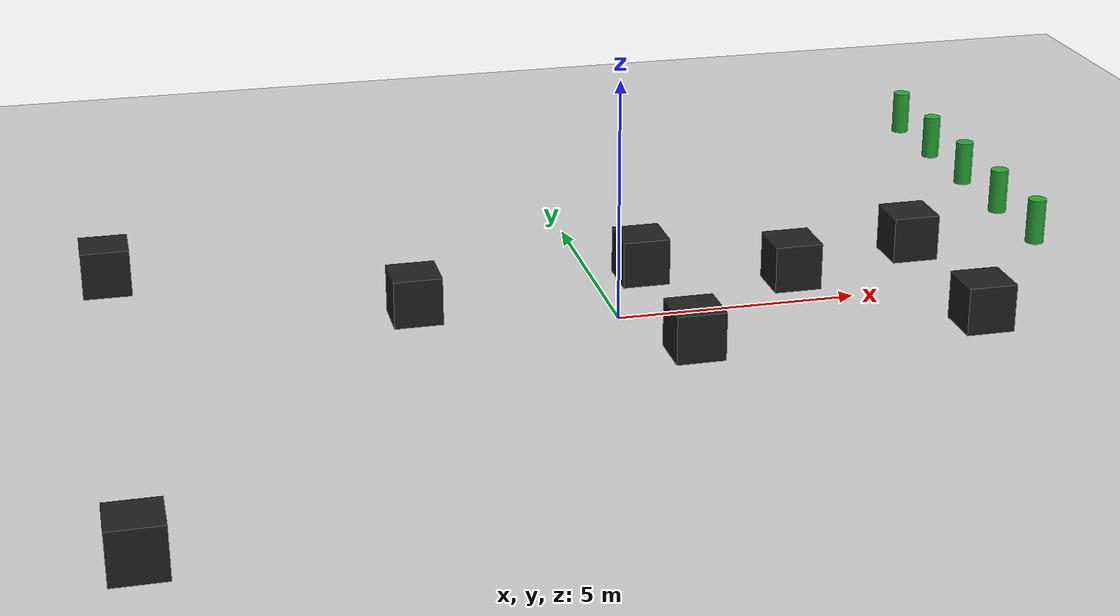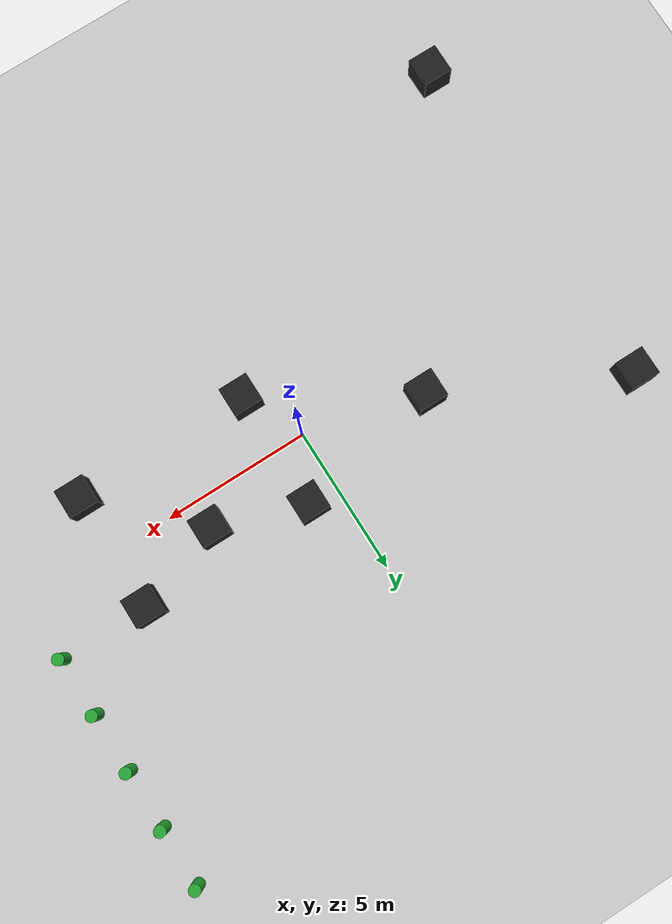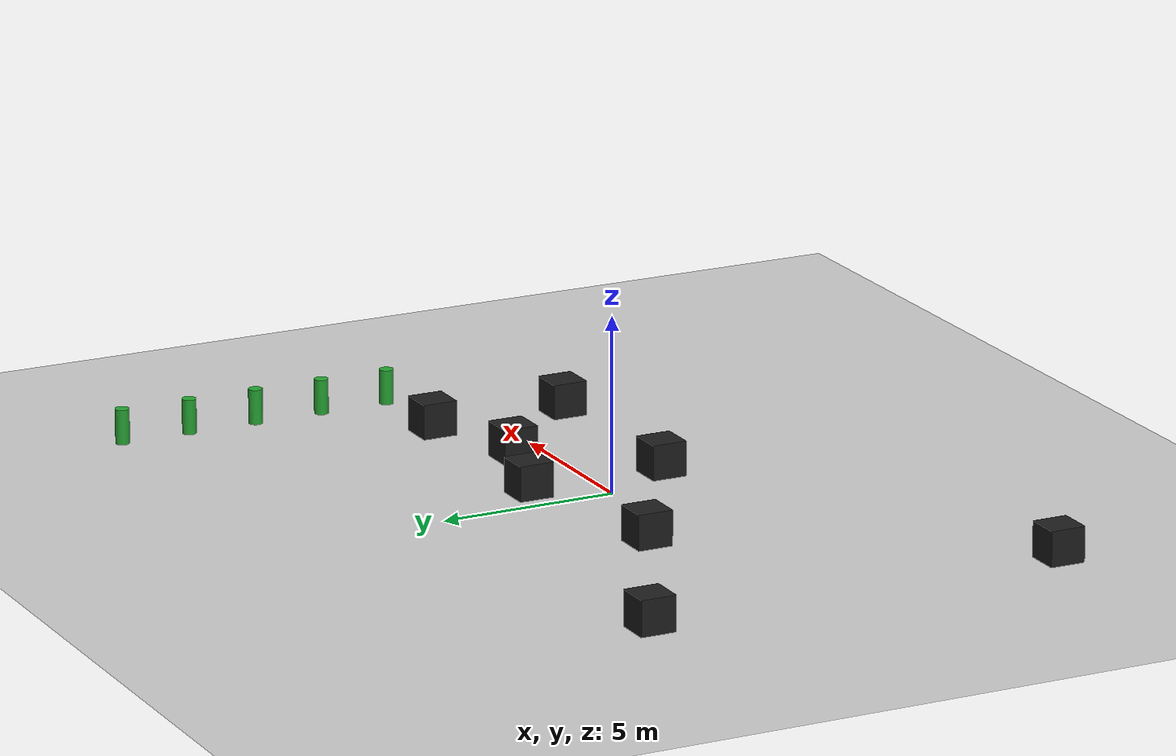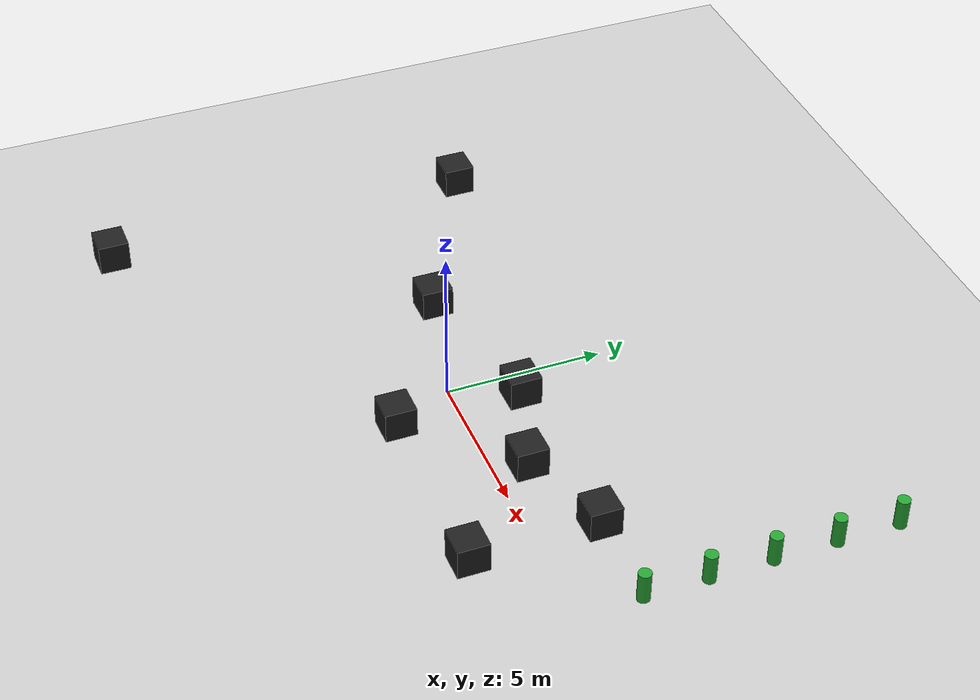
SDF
<?xml version="1.0" ?>
<sdf version="1.4">
  <world name="default">
    <!-- A global light source -->
    <include>
      <uri>model://sun</uri>
    </include>
    <!-- A ground plane -->
    <include>
      <uri>model://ground_plane</uri>
    </include>
    <!-- Own physics settings to speed up simulation -->
    <physics type='ode'>
      <max_step_size>0.01</max_step_size>
      <gravity>0 0 -9.8</gravity>
    </physics>

		<model name='point_goal0'>
			<pose>10 10 0.5 0 0 0</pose>
			<link name='link'>
				<inertial>
					<mass>1</mass>
				</inertial>
				<visual name='visual'>
					<geometry>
						<cylinder>
								<radius>0.2</radius>
								<length>1.0</length>
						</cylinder>
					</geometry>
					<material>
						<script>
							<uri>file://media/materials/scripts/gazebo.material</uri>
							<name>Gazebo/Green</name>
						</script>
					</material>
				</visual>
				<velocity_decay>
					<linear>0</linear>
					<angular>0</angular>
				</velocity_decay>
				<self_collide>0</self_collide>
				<kinematic>0</kinematic>
				<gravity>0</gravity>
			</link>
		</model>
		<model name='point_goal1'>
			<pose>10 8 0.5 0 0 0</pose>
			<link name='link'>
				<inertial>
					<mass>1</mass>
				</inertial>
				<visual name='visual'>
					<geometry>
						<cylinder>
								<radius>0.2</radius>
								<length>1.0</length>
						</cylinder>
					</geometry>
					<material>
						<script>
							<uri>file://media/materials/scripts/gazebo.material</uri>
							<name>Gazebo/Green</name>
						</script>
					</material>
				</visual>
				<velocity_decay>
					<linear>0</linear>
					<angular>0</angular>
				</velocity_decay>
				<self_collide>0</self_collide>
				<kinematic>0</kinematic>
				<gravity>0</gravity>
			</link>
		</model>
		<model name='point_goal2'>
			<pose>10 6 0.5 0 0 0</pose>
			<link name='link'>
				<inertial>
					<mass>1</mass>
				</inertial>
				<visual name='visual'>
					<geometry>
						<cylinder>
								<radius>0.2</radius>
								<length>1.0</length>
						</cylinder>
					</geometry>
					<material>
						<script>
							<uri>file://media/materials/scripts/gazebo.material</uri>
							<name>Gazebo/Green</name>
						</script>
					</material>
				</visual>
				<velocity_decay>
					<linear>0</linear>
					<angular>0</angular>
				</velocity_decay>
				<self_collide>0</self_collide>
				<kinematic>0</kinematic>
				<gravity>0</gravity>
			</link>
		</model>
		<model name='point_goal3'>
			<pose>10 4 0.5 0 0 0</pose>
			<link name='link'>
				<inertial>
					<mass>1</mass>
				</inertial>
				<visual name='visual'>
					<geometry>
						<cylinder>
								<radius>0.2</radius>
								<length>1.0</length>
						</cylinder>
					</geometry>
					<material>
						<script>
							<uri>file://media/materials/scripts/gazebo.material</uri>
							<name>Gazebo/Green</name>
						</script>
					</material>
				</visual>
				<velocity_decay>
					<linear>0</linear>
					<angular>0</angular>
				</velocity_decay>
				<self_collide>0</self_collide>
				<kinematic>0</kinematic>
				<gravity>0</gravity>
			</link>
		</model>
		<model name='point_goal4'>
			<pose>10 2 0.5 0 0 0</pose>
			<link name='link'>
				<inertial>
					<mass>1</mass>
				</inertial>
				<visual name='visual'>
					<geometry>
						<cylinder>
								<radius>0.2</radius>
								<length>1.0</length>
						</cylinder>
					</geometry>
					<material>
						<script>
							<uri>file://media/materials/scripts/gazebo.material</uri>
							<name>Gazebo/Green</name>
						</script>
					</material>
				</visual>
				<velocity_decay>
					<linear>0</linear>
					<angular>0</angular>
				</velocity_decay>
				<self_collide>0</self_collide>
				<kinematic>0</kinematic>
				<gravity>0</gravity>
			</link>
		</model>
  		<model name='obs0'>
			<pose>4 1 0.5 0 -0 0</pose>
			<link name='link'>
				<inertial>
					<mass>1.0</mass>
				</inertial>
				<collision name='collision'>
					<geometry>
						<box>
							<size>1 1 1</size>
						</box>
					</geometry>
				</collision>
				<visual name='visual'>
					<geometry>
						<box>
							<size>1 1 1</size>
						</box>
					</geometry>
					<material>
						<script>
							<uri>file://media/materials/scripts/gazebo.material</uri>
							<name>Gazebo/Black</name>
						</script>
					</material>
				</visual>
				<velocity_decay>
					<linear>0</linear>
					<angular>0</angular>
				</velocity_decay>
				<self_collide>0</self_collide>
				<kinematic>0</kinematic>
				<gravity>1</gravity>
			</link>
			<static>0</static>
		</model>

        <model name='obs1'>
			<pose>-4 1 0.5 0 -0 0</pose>
			<link name='link'>
				<inertial>
					<mass>1.0</mass>
				</inertial>
				<collision name='collision'>
					<geometry>
						<box>
							<size>1 1 1</size>
						</box>
					</geometry>
				</collision>
				<visual name='visual'>
					<geometry>
						<box>
							<size>1 1 1</size>
						</box>
					</geometry>
					<material>
						<script>
							<uri>file://media/materials/scripts/gazebo.material</uri>
							<name>Gazebo/Black</name>
						</script>
					</material>
				</visual>
				<velocity_decay>
					<linear>0</linear>
					<angular>0</angular>
				</velocity_decay>
				<self_collide>0</self_collide>
				<kinematic>0</kinematic>
				<gravity>1</gravity>
			</link>
			<static>0</static>
		</model>

        <model name='obs2'>
			<pose>-10 -8 0.5 0 -0 0</pose>
			<link name='link'>
				<inertial>
					<mass>1.0</mass>
				</inertial>
				<collision name='collision'>
					<geometry>
						<box>
							<size>1 1 1</size>
						</box>
					</geometry>
				</collision>
				<visual name='visual'>
					<geometry>
						<box>
							<size>1 1 1</size>
						</box>
					</geometry>
					<material>
						<script>
							<uri>file://media/materials/scripts/gazebo.material</uri>
							<name>Gazebo/Black</name>
						</script>
					</material>
				</visual>
				<velocity_decay>
					<linear>0</linear>
					<angular>0</angular>
				</velocity_decay>
				<self_collide>0</self_collide>
				<kinematic>0</kinematic>
				<gravity>1</gravity>
			</link>
			<static>0</static>
		</model>

        <model name='obs3'>
			<pose>-10 4 0.5 0 -0 0</pose>
			<link name='link'>
				<inertial>
					<mass>1.0</mass>
				</inertial>
				<collision name='collision'>
					<geometry>
						<box>
							<size>1 1 1</size>
						</box>
					</geometry>
				</collision>
				<visual name='visual'>
					<geometry>
						<box>
							<size>1 1 1</size>
						</box>
					</geometry>
					<material>
						<script>
							<uri>file://media/materials/scripts/gazebo.material</uri>
							<name>Gazebo/Black</name>
						</script>
					</material>
				</visual>
				<velocity_decay>
					<linear>0</linear>
					<angular>0</angular>
				</velocity_decay>
				<self_collide>0</self_collide>
				<kinematic>0</kinematic>
				<gravity>1</gravity>
			</link>
			<static>0</static>
		</model>

        <model name='obs4'>
			<pose>7 2 0.5 0 -0 0</pose>
			<link name='link'>
				<inertial>
					<mass>1.0</mass>
				</inertial>
				<collision name='collision'>
					<geometry>
						<box>
							<size>1 1 1</size>
						</box>
					</geometry>
				</collision>
				<visual name='visual'>
					<geometry>
						<box>
							<size>1 1 1</size>
						</box>
					</geometry>
					<material>
						<script>
							<uri>file://media/materials/scripts/gazebo.material</uri>
							<name>Gazebo/Black</name>
						</script>
					</material>
				</visual>
				<velocity_decay>
					<linear>0</linear>
					<angular>0</angular>
				</velocity_decay>
				<self_collide>0</self_collide>
				<kinematic>0</kinematic>
				<gravity>1</gravity>
			</link>
			<static>0</static>
		</model>

        <model name='obs5'>
			<pose>7 -2 0.5 0 -0 0</pose>
			<link name='link'>
				<inertial>
					<mass>1.0</mass>
				</inertial>
				<collision name='collision'>
					<geometry>
						<box>
							<size>1 1 1</size>
						</box>
					</geometry>
				</collision>
				<visual name='visual'>
					<geometry>
						<box>
							<size>1 1 1</size>
						</box>
					</geometry>
					<material>
						<script>
							<uri>file://media/materials/scripts/gazebo.material</uri>
							<name>Gazebo/Black</name>
						</script>
					</material>
				</visual>
				<velocity_decay>
					<linear>0</linear>
					<angular>0</angular>
				</velocity_decay>
				<self_collide>0</self_collide>
				<kinematic>0</kinematic>
				<gravity>1</gravity>
			</link>
			<static>0</static>
		</model>
    <model name='obs6'>
			<pose>1 2 0.5 0 -0 0</pose>
			<link name='link'>
				<inertial>
					<mass>1.0</mass>
				</inertial>
				<collision name='collision'>
					<geometry>
						<box>
							<size>1 1 1</size>
						</box>
					</geometry>
				</collision>
				<visual name='visual'>
					<geometry>
						<box>
							<size>1 1 1</size>
						</box>
					</geometry>
					<material>
						<script>
							<uri>file://media/materials/scripts/gazebo.material</uri>
							<name>Gazebo/Black</name>
						</script>
					</material>
				</visual>
				<velocity_decay>
					<linear>0</linear>
					<angular>0</angular>
				</velocity_decay>
				<self_collide>0</self_collide>
				<kinematic>0</kinematic>
				<gravity>1</gravity>
			</link>
			<static>0</static>
		</model>

        <model name='obs7'>
			<pose>1 -2 0.5 0 -0 0</pose>
			<link name='link'>
				<inertial>
					<mass>1.0</mass>
				</inertial>
				<collision name='collision'>
					<geometry>
						<box>
							<size>1 1 1</size>
						</box>
					</geometry>
				</collision>
				<visual name='visual'>
					<geometry>
						<box>
							<size>1 1 1</size>
						</box>
					</geometry>
					<material>
						<script>
							<uri>file://media/materials/scripts/gazebo.material</uri>
							<name>Gazebo/Black</name>
						</script>
					</material>
				</visual>
				<velocity_decay>
					<linear>0</linear>
					<angular>0</angular>
				</velocity_decay>
				<self_collide>0</self_collide>
				<kinematic>0</kinematic>
				<gravity>1</gravity>
			</link>
			<static>0</static>
		</model>
  </world>
</sdf>
